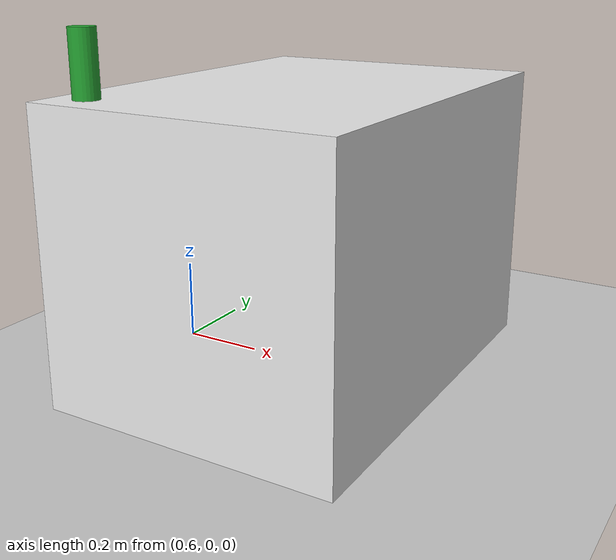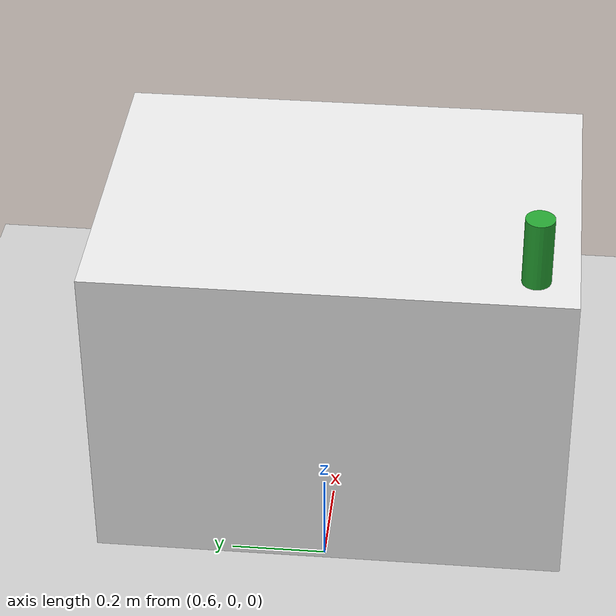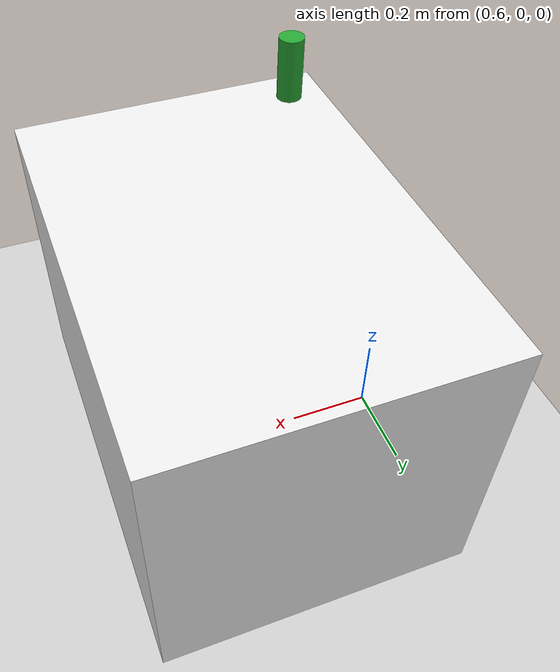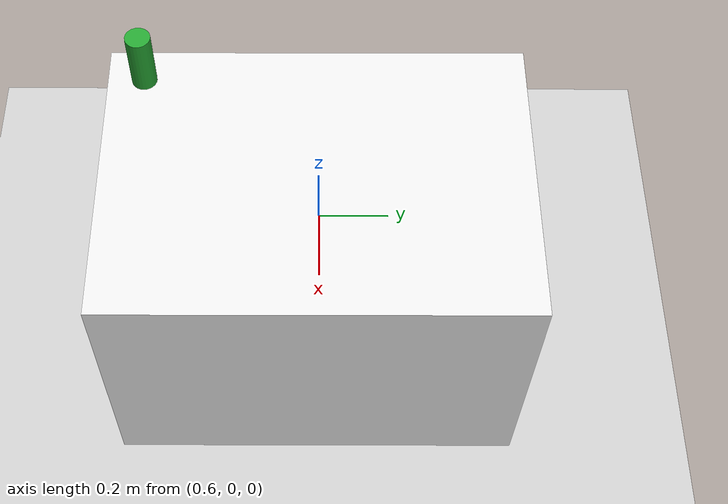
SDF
<sdf version="1.4">
 <world name="default">
  <light name="sun" type="directional">
   <pose>0 0 10 0 -0 0</pose>
   <diffuse>0.8 0.8 0.8 1</diffuse>
   <specular>0.2 0.2 0.2 1</specular>
   <attenuation>
    <range>1000</range>
    <constant>0.9</constant>
    <linear>0.01</linear>
    <quadratic>0.001</quadratic>
   </attenuation>
   <direction>-0.5 0.1 -0.9</direction>
  </light>
  <model name="ground_plane">
   <static>1</static>
   <link name="link">
    <collision name="collision">
     <geometry><plane><normal>0 0 1</normal><size>100 100</size></plane></geometry>
     <surface><friction><ode><mu>100</mu><mu2>50</mu2></ode></friction></surface>
    </collision>
    <visual name="visual">
     <cast_shadows>0</cast_shadows>
     <geometry><plane><normal>0 0 1</normal><size>100 100</size></plane></geometry>
     <material>
      <script><uri>file://media/materials/scripts/gazebo.material</uri><name>Gazebo/Grey</name></script>
     </material>
    </visual>
    <velocity_decay><linear>0</linear><angular>0</angular></velocity_decay>
   </link>
  </model>
  <physics type="ode">
   <max_step_size>0.001</max_step_size>
   <real_time_factor>1</real_time_factor>
   <real_time_update_rate>1000</real_time_update_rate>
   <gravity>0 0 -9.8</gravity>
  </physics>
  <scene><ambient>0.4 0.4 0.4 1</ambient><background>0.7 0.7 0.7 1</background><shadows>1</shadows></scene>
  <spherical_coordinates>
   <surface_model>EARTH_WGS84</surface_model>
   <latitude_deg>0</latitude_deg>
   <longitude_deg>0</longitude_deg>
   <elevation>0</elevation>
   <heading_deg>0</heading_deg>
  </spherical_coordinates>
  <model name="unit_box_1">
   <pose>0.949477 -0.004397 0.3482 0.000552 -0.000382 0.001725</pose>
   <link name="link">
    <inertial>
     <mass>1000</mass>
     <inertia><ixx>1000</ixx><ixy>0</ixy><ixz>0</ixz><iyy>1000</iyy><iyz>0</iyz><izz>1000</izz></inertia>
    </inertial>
    <collision name="collision"><geometry><box><size>0.72549 1 0.7</size></box></geometry></collision>
    <visual name="visual">
     <geometry><box><size>0.72549 1 0.7</size></box></geometry>
     <material>
      <script><uri>file://media/materials/scripts/gazebo.material</uri><name>Gazebo/White</name></script>
     </material>
    </visual>
    <velocity_decay><linear>0</linear><angular>0</angular></velocity_decay>
   </link>
   <static>0</static>
  </model>
  <model name="unit_object_Green">
   <pose>0.67192 -0.417499 0.772902 0.00242 -0.001772 -0.002873</pose>
   <link name="link">
    <inertial>
     <mass>1.0</mass>
     <inertia><ixx>1.0</ixx><ixy>0</ixy><ixz>0</ixz><iyy>1.0</iyy><iyz>0</iyz><izz>1.0</izz></inertia>
    </inertial>
    <collision name="collision">
     <geometry><cylinder><radius>0.03</radius><length>0.15</length></cylinder></geometry>
     <surface><friction><ode><mu>30</mu><mu2>15</mu2></ode></friction></surface>
    </collision>
    <visual name="visual">
     <geometry><cylinder><radius>0.03</radius><length>0.15</length></cylinder></geometry>
     <material>
      <script><uri>file://media/materials/scripts/gazebo.material</uri><name>Gazebo/Green</name></script>
     </material>
    </visual>
    <velocity_decay><linear>0</linear><angular>0</angular></velocity_decay>
   </link>
   <static>0</static>
  </model>
 </world>
</sdf>
